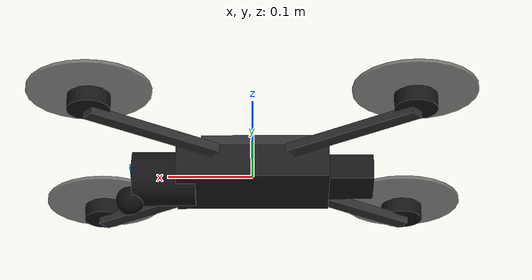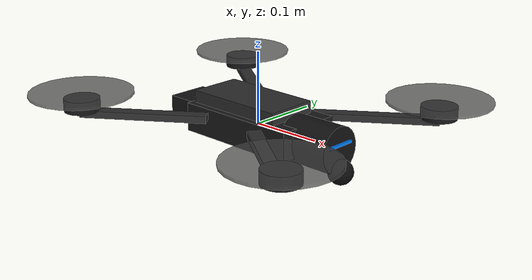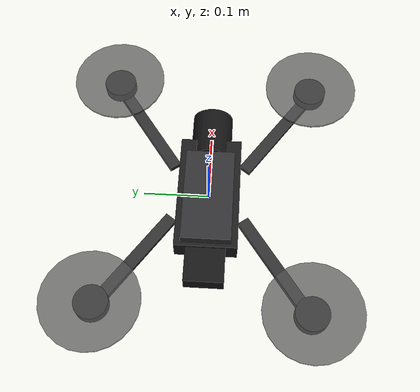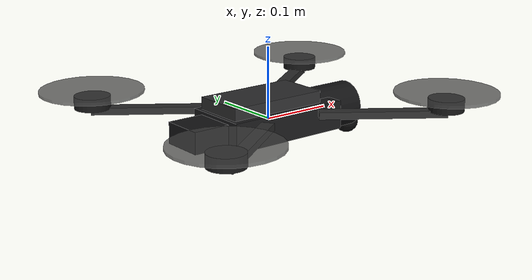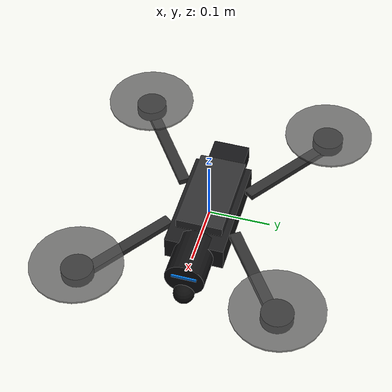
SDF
<?xml version="1.0" ?>
<sdf version="1.6">
  <model name="anafi4k">

    <static>false</static>
    <linear_damping>0.5</linear_damping>
    <angular_damping>0.5</angular_damping>

    <plugin filename="libCmdVelFlightPlugin.so" name="CmdVelFlightPlugin"/>
    <link name="base_link">

      <!-- Hover at spawn height — no physics needed for CV testing -->
      <gravity>true</gravity>
      <self_collide>false</self_collide>

      <!-- ── Inertia (real Anafi 4K: 320 g) ──────────────────────── -->
      <inertial>
        <mass>0.320</mass>
        <inertia>
          <ixx>0.0035</ixx> <ixy>0.0</ixy> <ixz>0.0</ixz>
                            <iyy>0.0035</iyy> <iyz>0.0</iyz>
                                              <izz>0.0060</izz>
        </inertia>
      </inertial>

      <!-- ── Collision hull ───────────────────────────────────────── -->
      <collision name="body_col">
        <geometry><box><size>0.22 0.16 0.055</size></box></geometry>
      </collision>

      <!-- ══════════════ VISUALS ══════════════════════════════════ -->

      <!-- Slim Anafi-style central fuselage -->
      <visual name="body">
        <geometry><box><size>0.18 0.095 0.040</size></box></geometry>
        <material>
          <ambient>0.10 0.10 0.105 1</ambient>
          <diffuse>0.10 0.10 0.105 1</diffuse>
          <specular>0.40 0.40 0.40 1</specular>
          <emissive>0 0 0 0</emissive>
        </material>
      </visual>

      <visual name="top_shell">
        <pose>-0.012 0 0.028 0 0 0</pose>
        <geometry><box><size>0.145 0.075 0.018</size></box></geometry>
        <material>
          <ambient>0.18 0.18 0.185 1</ambient>
          <diffuse>0.18 0.18 0.185 1</diffuse>
          <specular>0.45 0.45 0.45 1</specular>
        </material>
      </visual>

      <visual name="front_nose">
        <pose>0.105 0 -0.002 0 1.5708 0</pose>
        <geometry><cylinder><radius>0.032</radius><length>0.075</length></cylinder></geometry>
        <material>
          <ambient>0.07 0.07 0.075 1</ambient>
          <diffuse>0.07 0.07 0.075 1</diffuse>
          <specular>0.50 0.50 0.50 1</specular>
        </material>
      </visual>

      <visual name="rear_tail">
        <pose>-0.115 0 0.000 0 0 0</pose>
        <geometry><box><size>0.055 0.060 0.030</size></box></geometry>
        <material>
          <ambient>0.08 0.08 0.085 1</ambient>
          <diffuse>0.08 0.08 0.085 1</diffuse>
          <specular>0.35 0.35 0.35 1</specular>
        </material>
      </visual>

      <!-- Long folding arms and motor pods -->
      <visual name="arm_fl">
        <pose>0.115 0.105 0.010 0 0 0.62</pose>
        <geometry><box><size>0.175 0.018 0.010</size></box></geometry>
        <material><ambient>0.18 0.18 0.18 1</ambient><diffuse>0.18 0.18 0.18 1</diffuse></material>
      </visual>
      <visual name="arm_fr">
        <pose>0.115 -0.105 0.010 0 0 -0.62</pose>
        <geometry><box><size>0.175 0.018 0.010</size></box></geometry>
        <material><ambient>0.18 0.18 0.18 1</ambient><diffuse>0.18 0.18 0.18 1</diffuse></material>
      </visual>
      <visual name="arm_rl">
        <pose>-0.115 0.105 0.010 0 0 -0.62</pose>
        <geometry><box><size>0.175 0.018 0.010</size></box></geometry>
        <material><ambient>0.18 0.18 0.18 1</ambient><diffuse>0.18 0.18 0.18 1</diffuse></material>
      </visual>
      <visual name="arm_rr">
        <pose>-0.115 -0.105 0.010 0 0 0.62</pose>
        <geometry><box><size>0.175 0.018 0.010</size></box></geometry>
        <material><ambient>0.18 0.18 0.18 1</ambient><diffuse>0.18 0.18 0.18 1</diffuse></material>
      </visual>

      <visual name="motor_fl">
        <pose>0.185 0.155 0.022 0 0 0</pose>
        <geometry><cylinder><radius>0.025</radius><length>0.018</length></cylinder></geometry>
        <material><ambient>0.08 0.08 0.08 1</ambient><diffuse>0.08 0.08 0.08 1</diffuse></material>
      </visual>
      <visual name="motor_fr">
        <pose>0.185 -0.155 0.022 0 0 0</pose>
        <geometry><cylinder><radius>0.025</radius><length>0.018</length></cylinder></geometry>
        <material><ambient>0.08 0.08 0.08 1</ambient><diffuse>0.08 0.08 0.08 1</diffuse></material>
      </visual>
      <visual name="motor_rl">
        <pose>-0.185 0.155 0.022 0 0 0</pose>
        <geometry><cylinder><radius>0.025</radius><length>0.018</length></cylinder></geometry>
        <material><ambient>0.08 0.08 0.08 1</ambient><diffuse>0.08 0.08 0.08 1</diffuse></material>
      </visual>
      <visual name="motor_rr">
        <pose>-0.185 -0.155 0.022 0 0 0</pose>
        <geometry><cylinder><radius>0.025</radius><length>0.018</length></cylinder></geometry>
        <material><ambient>0.08 0.08 0.08 1</ambient><diffuse>0.08 0.08 0.08 1</diffuse></material>
      </visual>

      <!-- Rotor discs (4×) — flat cylinders at arm tips -->
      <visual name="rotor_fl">
        <pose>0.185 0.155 0.038 0 0 0</pose>
        <geometry><cylinder><radius>0.072</radius><length>0.004</length></cylinder></geometry>
        <material><ambient>0.30 0.30 0.30 0.75</ambient><diffuse>0.30 0.30 0.30 0.75</diffuse></material>
      </visual>
      <visual name="rotor_fr">
        <pose>0.185 -0.155 0.038 0 0 0</pose>
        <geometry><cylinder><radius>0.072</radius><length>0.004</length></cylinder></geometry>
        <material><ambient>0.30 0.30 0.30 0.75</ambient><diffuse>0.30 0.30 0.30 0.75</diffuse></material>
      </visual>
      <visual name="rotor_rl">
        <pose>-0.185 0.155 0.038 0 0 0</pose>
        <geometry><cylinder><radius>0.072</radius><length>0.004</length></cylinder></geometry>
        <material><ambient>0.30 0.30 0.30 0.75</ambient><diffuse>0.30 0.30 0.30 0.75</diffuse></material>
      </visual>
      <visual name="rotor_rr">
        <pose>-0.185 -0.155 0.038 0 0 0</pose>
        <geometry><cylinder><radius>0.072</radius><length>0.004</length></cylinder></geometry>
        <material><ambient>0.30 0.30 0.30 0.75</ambient><diffuse>0.30 0.30 0.30 0.75</diffuse></material>
      </visual>

      <!-- Camera gimbal pod (front-bottom, Anafi-style ball mount) -->
      <visual name="gimbal_pod">
        <pose>0.145 0 -0.030 0 0 0</pose>
        <geometry><sphere><radius>0.017</radius></sphere></geometry>
        <material>
          <ambient>0.05 0.05 0.05 1</ambient>
          <diffuse>0.05 0.05 0.05 1</diffuse>
          <specular>0.50 0.50 0.50 1</specular>
        </material>
      </visual>

      <!-- LED strip (front edge) for orientation cue in Gazebo view -->
      <visual name="front_led">
        <pose>0.143 0 0.006 0 0 0</pose>
        <geometry><box><size>0.004 0.040 0.004</size></box></geometry>
        <material><ambient>0.0 0.5 1.0 1</ambient><emissive>0.0 0.4 0.8 1</emissive></material>
      </visual>

      <sensor name="anafi_camera" type="camera">
        <pose>0.158 0 -0.026 0 0 0</pose>
        <camera name="anafi_camera">
          <horizontal_fov>1.309</horizontal_fov>
          <image>
            <width>1280</width>
            <height>720</height>
            <format>R8G8B8</format>
          </image>
          <clip>
            <near>0.10</near>
            <far>100.0</far>
          </clip>
          <noise>
            <type>gaussian</type>
            <mean>0.0</mean>
            <stddev>0.004</stddev>
          </noise>
        </camera>
        <always_on>true</always_on>
        <update_rate>30</update_rate>
        <visualize>false</visualize>  <!-- set true to see frustum in Gazebo -->
      </sensor>

    </link>  <!-- end base_link -->
  </model>
</sdf>
